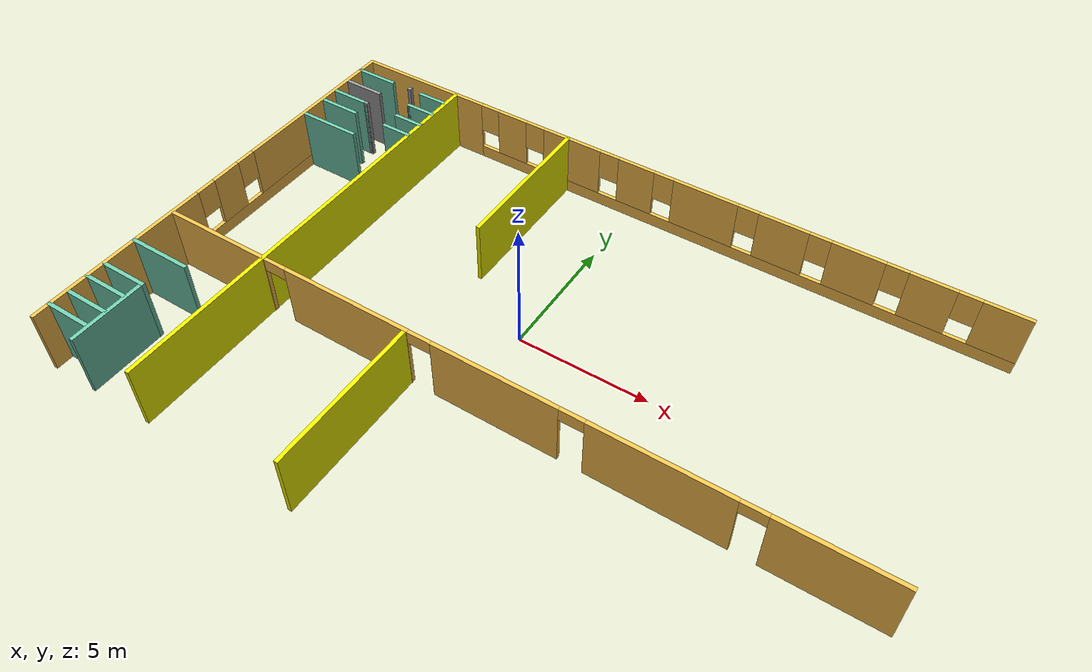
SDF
<sdf version="1.6">
 <model name="mybuilding">
  <pose>1.04921 -0.845204 0 0 -0 0</pose>
  <link name="Wall_104">
   <collision name="Wall_104_Collision">
    <geometry><box><size>17.1 0.15 2.5</size></box></geometry>
    <pose>0 0 1.25 0 -0 0</pose>
   </collision>
   <visual name="Wall_104_Visual">
    <pose>0 0 1.25 0 -0 0</pose>
    <geometry><box><size>17.1 0.15 2.5</size></box></geometry>
    <material>
     <script><uri>file://media/materials/scripts/gazebo.material</uri><name>Gazebo/Grey</name></script>
     <ambient>1 1 0 1</ambient>
    </material>
    <meta><layer>0</layer></meta>
   </visual>
   <pose>-9.12987 -0.014892 0 0 0 -1.5708</pose>
  </link>
  <link name="Wall_106">
   <collision name="Wall_106_Collision">
    <geometry><box><size>2.5 0.15 2.5</size></box></geometry>
    <pose>0 0 1.25 0 -0 0</pose>
   </collision>
   <visual name="Wall_106_Visual">
    <pose>0 0 1.25 0 -0 0</pose>
    <geometry><box><size>2.5 0.15 2.5</size></box></geometry>
    <material>
     <script><uri>file://media/materials/scripts/gazebo.material</uri><name>Gazebo/Grey</name></script>
     <ambient>0.435294 0.796078 0.67451 1</ambient>
    </material>
    <meta><layer>0</layer></meta>
   </visual>
   <pose>-12.1433 4.3296 0 0 -0 0</pose>
  </link>
  <link name="Wall_111">
   <collision name="Wall_111_Collision">
    <geometry><box><size>2.5 0.15 2.5</size></box></geometry>
    <pose>0 0 1.25 0 -0 0</pose>
   </collision>
   <visual name="Wall_111_Visual">
    <pose>0 0 1.25 0 -0 0</pose>
    <geometry><box><size>2.5 0.15 2.5</size></box></geometry>
    <material>
     <script><uri>file://media/materials/scripts/gazebo.material</uri><name>Gazebo/Grey</name></script>
     <ambient>0.435294 0.796078 0.67451 1</ambient>
    </material>
    <meta><layer>0</layer></meta>
   </visual>
   <pose>-12.2145 -4.32806 0 0 -0 0</pose>
  </link>
  <link name="Wall_113">
   <collision name="Wall_113_Collision">
    <geometry><box><size>1.75 0.15 2.5</size></box></geometry>
    <pose>0 0 1.25 0 -0 0</pose>
   </collision>
   <visual name="Wall_113_Visual">
    <pose>0 0 1.25 0 -0 0</pose>
    <geometry><box><size>1.75 0.15 2.5</size></box></geometry>
    <material>
     <script><uri>file://media/materials/scripts/gazebo.material</uri><name>Gazebo/Grey</name></script>
     <ambient>0.435294 0.796078 0.67451 1</ambient>
    </material>
    <meta><layer>0</layer></meta>
   </visual>
   <pose>-12.5657 5.4207 0 0 -0 0</pose>
  </link>
  <link name="Wall_118">
   <collision name="Wall_118_Collision">
    <geometry><box><size>1.75 0.15 2.5</size></box></geometry>
    <pose>0 0 1.25 0 -0 0</pose>
   </collision>
   <visual name="Wall_118_Visual">
    <pose>0 0 1.25 0 -0 0</pose>
    <geometry><box><size>1.75 0.15 2.5</size></box></geometry>
    <material>
     <script><uri>file://media/materials/scripts/gazebo.material</uri><name>Gazebo/Grey</name></script>
     <ambient>1 1 1 1</ambient>
    </material>
    <meta><layer>0</layer></meta>
   </visual>
   <pose>-12.591 6.93726 0 0 -0 0</pose>
  </link>
  <link name="Wall_122">
   <collision name="Wall_122_Collision">
    <geometry><box><size>1.75 0.15 2.5</size></box></geometry>
    <pose>0 0 1.25 0 -0 0</pose>
   </collision>
   <visual name="Wall_122_Visual">
    <pose>0 0 1.25 0 -0 0</pose>
    <geometry><box><size>1.75 0.15 2.5</size></box></geometry>
    <material>
     <script><uri>file://media/materials/scripts/gazebo.material</uri><name>Gazebo/Grey</name></script>
     <ambient>0.435294 0.796078 0.67451 1</ambient>
    </material>
    <meta><layer>0</layer></meta>
   </visual>
   <pose>-12.591 7.81489 0 0 -0 0</pose>
  </link>
  <link name="Wall_124">
   <collision name="Wall_124_Collision">
    <geometry><box><size>1.75 0.15 2.5</size></box></geometry>
    <pose>0 0 1.25 0 -0 0</pose>
   </collision>
   <visual name="Wall_124_Visual">
    <pose>0 0 1.25 0 -0 0</pose>
    <geometry><box><size>1.75 0.15 2.5</size></box></geometry>
    <material>
     <script><uri>file://media/materials/scripts/gazebo.material</uri><name>Gazebo/Grey</name></script>
     <ambient>0.435294 0.796078 0.67451 1</ambient>
    </material>
    <meta><layer>0</layer></meta>
   </visual>
   <pose>-12.591 6.15451 0 0 -0 0</pose>
  </link>
  <link name="Wall_125">
   <collision name="Wall_125_Collision">
    <geometry><box><size>0.16 0.15 2.5</size></box></geometry>
    <pose>0 0 1.25 0 -0 0</pose>
   </collision>
   <visual name="Wall_125_Visual">
    <pose>0 0 1.25 0 -0 0</pose>
    <geometry><box><size>0.16 0.15 2.5</size></box></geometry>
    <material>
     <script><uri>file://media/materials/scripts/gazebo.material</uri><name>Gazebo/Grey</name></script>
     <ambient>0 0 0 0</ambient>
    </material>
    <meta><layer>0</layer></meta>
   </visual>
   <pose>-11.786 6.15451 0 0 -0 0</pose>
  </link>
  <link name="Wall_128">
   <collision name="Wall_128_Collision">
    <geometry><box><size>1.25 0.15 2.5</size></box></geometry>
    <pose>0 0 1.25 0 -0 0</pose>
   </collision>
   <visual name="Wall_128_Visual">
    <pose>0 0 1.25 0 -0 0</pose>
    <geometry><box><size>1.25 0.15 2.5</size></box></geometry>
    <material>
     <script><uri>file://media/materials/scripts/gazebo.material</uri><name>Gazebo/Grey</name></script>
     <ambient>0.435294 0.796078 0.67451 1</ambient>
    </material>
    <meta><layer>0</layer></meta>
   </visual>
   <pose>-9.76007 7.80847 0 0 -0 3.14159</pose>
  </link>
  <link name="Wall_130">
   <collision name="Wall_130_Collision">
    <geometry><box><size>1.25 0.15 2.5</size></box></geometry>
    <pose>0 0 1.25 0 -0 0</pose>
   </collision>
   <visual name="Wall_130_Visual">
    <pose>0 0 1.25 0 -0 0</pose>
    <geometry><box><size>1.25 0.15 2.5</size></box></geometry>
    <material>
     <script><uri>file://media/materials/scripts/gazebo.material</uri><name>Gazebo/Grey</name></script>
     <ambient>0.435294 0.796078 0.67451 1</ambient>
    </material>
    <meta><layer>0</layer></meta>
   </visual>
   <pose>-9.71164 6.96281 0 0 -0 3.14159</pose>
  </link>
  <link name="Wall_131">
   <collision name="Wall_131_Collision">
    <geometry><box><size>0.16 0.15 2.5</size></box></geometry>
    <pose>0 0 1.25 0 -0 0</pose>
   </collision>
   <visual name="Wall_131_Visual">
    <pose>0 0 1.25 0 -0 0</pose>
    <geometry><box><size>0.16 0.15 2.5</size></box></geometry>
    <material>
     <script><uri>file://media/materials/scripts/gazebo.material</uri><name>Gazebo/Grey</name></script>
     <ambient>0 0 0 0</ambient>
    </material>
    <meta><layer>0</layer></meta>
   </visual>
   <pose>-10.2566 6.96281 0 0 -0 0</pose>
  </link>
  <link name="Wall_132">
   <collision name="Wall_132_Collision">
    <geometry><box><size>1.25 0.15 2.5</size></box></geometry>
    <pose>0 0 1.25 0 -0 0</pose>
   </collision>
   <visual name="Wall_132_Visual">
    <pose>0 0 1.25 0 -0 0</pose>
    <geometry><box><size>1.25 0.15 2.5</size></box></geometry>
    <material>
     <script><uri>file://media/materials/scripts/gazebo.material</uri><name>Gazebo/Grey</name></script>
     <ambient>0.435294 0.796078 0.67451 1</ambient>
    </material>
    <meta><layer>0</layer></meta>
   </visual>
   <pose>-9.70141 6.15841 0 0 -0 3.14159</pose>
  </link>
  <link name="Wall_134">
   <collision name="Wall_134_Collision">
    <geometry><box><size>1.25 0.15 2.5</size></box></geometry>
    <pose>0 0 1.25 0 -0 0</pose>
   </collision>
   <visual name="Wall_134_Visual">
    <pose>0 0 1.25 0 -0 0</pose>
    <geometry><box><size>1.25 0.15 2.5</size></box></geometry>
    <material>
     <script><uri>file://media/materials/scripts/gazebo.material</uri><name>Gazebo/Grey</name></script>
     <ambient>0.435294 0.796078 0.67451 1</ambient>
    </material>
    <meta><layer>0</layer></meta>
   </visual>
   <pose>-9.7135 5.41701 0 0 -0 3.14159</pose>
  </link>
  <link name="Wall_139">
   <collision name="Wall_139_Collision">
    <geometry><box><size>3 0.15 2.5</size></box></geometry>
    <pose>0 0 1.25 0 -0 0</pose>
   </collision>
   <visual name="Wall_139_Visual">
    <pose>0 0 1.25 0 -0 0</pose>
    <geometry><box><size>3 0.15 2.5</size></box></geometry>
    <material>
     <script><uri>file://media/materials/scripts/gazebo.material</uri><name>Gazebo/Grey</name></script>
     <ambient>0.435294 0.796078 0.67451 1</ambient>
    </material>
    <meta><layer>0</layer></meta>
   </visual>
   <pose>-11.6 -7.09333 0 0 -0 1.5708</pose>
  </link>
  <link name="Wall_140">
   <collision name="Wall_140_Collision">
    <geometry><box><size>1.9 0.15 2.5</size></box></geometry>
    <pose>0 0 1.25 0 -0 0</pose>
   </collision>
   <visual name="Wall_140_Visual">
    <pose>0 0 1.25 0 -0 0</pose>
    <geometry><box><size>1.9 0.15 2.5</size></box></geometry>
    <material>
     <script><uri>file://media/materials/scripts/gazebo.material</uri><name>Gazebo/Grey</name></script>
     <ambient>0.435294 0.796078 0.67451 1</ambient>
    </material>
    <meta><layer>0</layer></meta>
   </visual>
   <pose>-12.475 -5.66833 0 0 -0 3.14159</pose>
  </link>
  <link name="Wall_142">
   <collision name="Wall_142_Collision">
    <geometry><box><size>1.75 0.15 2.5</size></box></geometry>
    <pose>0 0 1.25 0 -0 0</pose>
   </collision>
   <visual name="Wall_142_Visual">
    <pose>0 0 1.25 0 -0 0</pose>
    <geometry><box><size>1.75 0.15 2.5</size></box></geometry>
    <material>
     <script><uri>file://media/materials/scripts/gazebo.material</uri><name>Gazebo/Grey</name></script>
     <ambient>0.435294 0.796078 0.67451 1</ambient>
    </material>
    <meta><layer>0</layer></meta>
   </visual>
   <pose>-12.4841 -7.19003 0 0 -0 0</pose>
  </link>
  <link name="Wall_144">
   <collision name="Wall_144_Collision">
    <geometry><box><size>1.8 0.15 2.5</size></box></geometry>
    <pose>0 0 1.25 0 -0 0</pose>
   </collision>
   <visual name="Wall_144_Visual">
    <pose>0 0 1.25 0 -0 0</pose>
    <geometry><box><size>1.8 0.15 2.5</size></box></geometry>
    <material>
     <script><uri>file://media/materials/scripts/gazebo.material</uri><name>Gazebo/Grey</name></script>
     <ambient>0.435294 0.796078 0.67451 1</ambient>
    </material>
    <meta><layer>0</layer></meta>
   </visual>
   <pose>-12.5407 -6.37701 0 0 -0 0</pose>
  </link>
  <link name="Wall_147">
   <collision name="Wall_147_Collision">
    <geometry><box><size>1.8 0.15 2.5</size></box></geometry>
    <pose>0 0 1.25 0 -0 0</pose>
   </collision>
   <visual name="Wall_147_Visual">
    <pose>0 0 1.25 0 -0 0</pose>
    <geometry><box><size>1.8 0.15 2.5</size></box></geometry>
    <material>
     <script><uri>file://media/materials/scripts/gazebo.material</uri><name>Gazebo/Grey</name></script>
     <ambient>0.435294 0.796078 0.67451 1</ambient>
    </material>
    <meta><layer>0</layer></meta>
   </visual>
   <pose>-12.5758 -7.90564 0 0 -0 0</pose>
  </link>
  <link name="Wall_151">
   <collision name="Wall_151_Collision">
    <geometry><box><size>6 0.15 2.5</size></box></geometry>
    <pose>0 0 1.25 0 -0 0</pose>
   </collision>
   <visual name="Wall_151_Visual">
    <pose>0 0 1.25 0 -0 0</pose>
    <geometry><box><size>6 0.15 2.5</size></box></geometry>
    <material>
     <script><uri>file://media/materials/scripts/gazebo.material</uri><name>Gazebo/Grey</name></script>
     <ambient>1 1 0 1</ambient>
    </material>
    <meta><layer>0</layer></meta>
   </visual>
   <pose>-3.91292 5.55304 0 0 0 -1.5708</pose>
  </link>
  <link name="Wall_156">
   <collision name="Wall_156_Collision">
    <geometry><box><size>6 0.15 2.5</size></box></geometry>
    <pose>0 0 1.25 0 -0 0</pose>
   </collision>
   <visual name="Wall_156_Visual">
    <pose>0 0 1.25 0 -0 0</pose>
    <geometry><box><size>6 0.15 2.5</size></box></geometry>
    <material>
     <script><uri>file://media/materials/scripts/gazebo.material</uri><name>Gazebo/Grey</name></script>
     <ambient>1 1 0 1</ambient>
    </material>
    <meta><layer>0</layer></meta>
   </visual>
   <pose>-3.08532 -5.54983 0 0 0 -1.5708</pose>
  </link>
  <link name="Wall_185">
   <collision name="Wall_185_Collision">
    <geometry><box><size>0.15 0.15 2.5</size></box></geometry>
    <pose>0 0 1.25 0 -0 0</pose>
   </collision>
   <visual name="Wall_185_Visual">
    <pose>0 0 1.25 0 -0 0</pose>
    <geometry><box><size>0.15 0.15 2.5</size></box></geometry>
    <material>
     <script><uri>file://media/materials/scripts/gazebo.material</uri><name>Gazebo/Grey</name></script>
     <ambient>1 1 1 1</ambient>
    </material>
    <meta><layer>0</layer></meta>
   </visual>
   <pose>-10.9249 7.85699 0 0 -0 0</pose>
  </link>
  <link name="Wall_89">
   <pose>-13.425 0 0 0 -0 1.5708</pose>
   <visual name="Wall_89_Visual_0">
    <pose>-5.00389 0 1.25 0 -0 0</pose>
    <geometry><box><size>7.24221 0.15 2.5</size></box></geometry>
    <material>
     <script><uri>file://media/materials/scripts/gazebo.material</uri><name>Gazebo/Grey</name></script>
     <ambient>1 0.764706 0.305882 1</ambient>
    </material>
    <meta><layer>0</layer></meta>
   </visual>
   <collision name="Wall_89_Collision_0">
    <geometry><box><size>7.24221 0.15 2.5</size></box></geometry>
    <pose>-5.00389 0 1.25 0 -0 0</pose>
   </collision>
   <visual name="Wall_89_Visual_1">
    <pose>3.62111 0 0.25 0 -0 0</pose>
    <geometry><box><size>10.0078 0.15 0.5</size></box></geometry>
    <material>
     <script><uri>file://media/materials/scripts/gazebo.material</uri><name>Gazebo/Grey</name></script>
     <ambient>1 0.764706 0.305882 1</ambient>
    </material>
    <meta><layer>0</layer></meta>
   </visual>
   <collision name="Wall_89_Collision_1">
    <geometry><box><size>10.0078 0.15 0.5</size></box></geometry>
    <pose>3.62111 0 0.25 0 -0 0</pose>
   </collision>
   <visual name="Wall_89_Visual_2">
    <pose>0.026482 0 1.5 0 -0 0</pose>
    <geometry><box><size>1.21854 0.15 2</size></box></geometry>
    <material>
     <script><uri>file://media/materials/scripts/gazebo.material</uri><name>Gazebo/Grey</name></script>
     <ambient>1 0.764706 0.305882 1</ambient>
    </material>
    <meta><layer>0</layer></meta>
   </visual>
   <collision name="Wall_89_Collision_2">
    <geometry><box><size>1.21854 0.15 2</size></box></geometry>
    <pose>0.026482 0 1.5 0 -0 0</pose>
   </collision>
   <visual name="Wall_89_Visual_3">
    <pose>5.03038 0 1.5 0 -0 0</pose>
    <geometry><box><size>7.18925 0.15 2</size></box></geometry>
    <material>
     <script><uri>file://media/materials/scripts/gazebo.material</uri><name>Gazebo/Grey</name></script>
     <ambient>1 0.764706 0.305882 1</ambient>
    </material>
    <meta><layer>0</layer></meta>
   </visual>
   <collision name="Wall_89_Collision_3">
    <geometry><box><size>7.18925 0.15 2</size></box></geometry>
    <pose>5.03038 0 1.5 0 -0 0</pose>
   </collision>
   <visual name="Wall_89_Visual_4">
    <pose>-0.982788 0 1.9 0 -0 0</pose>
    <geometry><box><size>0.8 0.15 1.2</size></box></geometry>
    <material>
     <script><uri>file://media/materials/scripts/gazebo.material</uri><name>Gazebo/Grey</name></script>
     <ambient>1 0.764706 0.305882 1</ambient>
    </material>
    <meta><layer>0</layer></meta>
   </visual>
   <collision name="Wall_89_Collision_4">
    <geometry><box><size>0.8 0.15 1.2</size></box></geometry>
    <pose>-0.982788 0 1.9 0 -0 0</pose>
   </collision>
   <visual name="Wall_89_Visual_5">
    <pose>1.03575 0 1.9 0 -0 0</pose>
    <geometry><box><size>0.8 0.15 1.2</size></box></geometry>
    <material>
     <script><uri>file://media/materials/scripts/gazebo.material</uri><name>Gazebo/Grey</name></script>
     <ambient>1 0.764706 0.305882 1</ambient>
    </material>
    <meta><layer>0</layer></meta>
   </visual>
   <collision name="Wall_89_Collision_5">
    <geometry><box><size>0.8 0.15 1.2</size></box></geometry>
    <pose>1.03575 0 1.9 0 -0 0</pose>
   </collision>
  </link>
  <link name="Wall_90">
   <pose>0 8.55 0 0 -0 0</pose>
   <visual name="Wall_90_Visual_0">
    <pose>-10.6849 0 1.25 0 -0 0</pose>
    <geometry><box><size>5.63012 0.15 2.5</size></box></geometry>
    <material>
     <script><uri>file://media/materials/scripts/gazebo.material</uri><name>Gazebo/Grey</name></script>
     <ambient>1 0.764706 0.305882 1</ambient>
    </material>
    <meta><layer>0</layer></meta>
   </visual>
   <collision name="Wall_90_Collision_0">
    <geometry><box><size>5.63012 0.15 2.5</size></box></geometry>
    <pose>-10.6849 0 1.25 0 -0 0</pose>
   </collision>
   <visual name="Wall_90_Visual_1">
    <pose>2.81506 0 0.25 0 -0 0</pose>
    <geometry><box><size>21.3699 0.15 0.5</size></box></geometry>
    <material>
     <script><uri>file://media/materials/scripts/gazebo.material</uri><name>Gazebo/Grey</name></script>
     <ambient>1 0.764706 0.305882 1</ambient>
    </material>
    <meta><layer>0</layer></meta>
   </visual>
   <collision name="Wall_90_Collision_1">
    <geometry><box><size>21.3699 0.15 0.5</size></box></geometry>
    <pose>2.81506 0 0.25 0 -0 0</pose>
   </collision>
   <visual name="Wall_90_Visual_2">
    <pose>-6.41969 0 1.5 0 -0 0</pose>
    <geometry><box><size>1.30037 0.15 2</size></box></geometry>
    <material>
     <script><uri>file://media/materials/scripts/gazebo.material</uri><name>Gazebo/Grey</name></script>
     <ambient>1 0.764706 0.305882 1</ambient>
    </material>
    <meta><layer>0</layer></meta>
   </visual>
   <collision name="Wall_90_Collision_2">
    <geometry><box><size>1.30037 0.15 2</size></box></geometry>
    <pose>-6.41969 0 1.5 0 -0 0</pose>
   </collision>
   <visual name="Wall_90_Visual_3">
    <pose>-3.71922 0 1.5 0 -0 0</pose>
    <geometry><box><size>2.50059 0.15 2</size></box></geometry>
    <material>
     <script><uri>file://media/materials/scripts/gazebo.material</uri><name>Gazebo/Grey</name></script>
     <ambient>1 0.764706 0.305882 1</ambient>
    </material>
    <meta><layer>0</layer></meta>
   </visual>
   <collision name="Wall_90_Collision_3">
    <geometry><box><size>2.50059 0.15 2</size></box></geometry>
    <pose>-3.71922 0 1.5 0 -0 0</pose>
   </collision>
   <visual name="Wall_90_Visual_4">
    <pose>-0.923265 0 1.5 0 -0 0</pose>
    <geometry><box><size>1.49131 0.15 2</size></box></geometry>
    <material>
     <script><uri>file://media/materials/scripts/gazebo.material</uri><name>Gazebo/Grey</name></script>
     <ambient>1 0.764706 0.305882 1</ambient>
    </material>
    <meta><layer>0</layer></meta>
   </visual>
   <collision name="Wall_90_Collision_4">
    <geometry><box><size>1.49131 0.15 2</size></box></geometry>
    <pose>-0.923265 0 1.5 0 -0 0</pose>
   </collision>
   <visual name="Wall_90_Visual_5">
    <pose>1.90157 0 1.5 0 -0 0</pose>
    <geometry><box><size>2.55835 0.15 2</size></box></geometry>
    <material>
     <script><uri>file://media/materials/scripts/gazebo.material</uri><name>Gazebo/Grey</name></script>
     <ambient>1 0.764706 0.305882 1</ambient>
    </material>
    <meta><layer>0</layer></meta>
   </visual>
   <collision name="Wall_90_Collision_5">
    <geometry><box><size>2.55835 0.15 2</size></box></geometry>
    <pose>1.90157 0 1.5 0 -0 0</pose>
   </collision>
   <visual name="Wall_90_Visual_6">
    <pose>4.92912 0 1.5 0 -0 0</pose>
    <geometry><box><size>1.89675 0.15 2</size></box></geometry>
    <material>
     <script><uri>file://media/materials/scripts/gazebo.material</uri><name>Gazebo/Grey</name></script>
     <ambient>1 0.764706 0.305882 1</ambient>
    </material>
    <meta><layer>0</layer></meta>
   </visual>
   <collision name="Wall_90_Collision_6">
    <geometry><box><size>1.89675 0.15 2</size></box></geometry>
    <pose>4.92912 0 1.5 0 -0 0</pose>
   </collision>
   <visual name="Wall_90_Visual_7">
    <pose>7.64173 0 1.5 0 -0 0</pose>
    <geometry><box><size>1.92848 0.15 2</size></box></geometry>
    <material>
     <script><uri>file://media/materials/scripts/gazebo.material</uri><name>Gazebo/Grey</name></script>
     <ambient>1 0.764706 0.305882 1</ambient>
    </material>
    <meta><layer>0</layer></meta>
   </visual>
   <collision name="Wall_90_Collision_7">
    <geometry><box><size>1.92848 0.15 2</size></box></geometry>
    <pose>7.64173 0 1.5 0 -0 0</pose>
   </collision>
   <visual name="Wall_90_Visual_8">
    <pose>10.2274 0 1.5 0 -0 0</pose>
    <geometry><box><size>1.64294 0.15 2</size></box></geometry>
    <material>
     <script><uri>file://media/materials/scripts/gazebo.material</uri><name>Gazebo/Grey</name></script>
     <ambient>1 0.764706 0.305882 1</ambient>
    </material>
    <meta><layer>0</layer></meta>
   </visual>
   <collision name="Wall_90_Collision_8">
    <geometry><box><size>1.64294 0.15 2</size></box></geometry>
    <pose>10.2274 0 1.5 0 -0 0</pose>
   </collision>
   <visual name="Wall_90_Visual_9">
    <pose>12.6745 0 1.5 0 -0 0</pose>
    <geometry><box><size>1.65109 0.15 2</size></box></geometry>
    <material>
     <script><uri>file://media/materials/scripts/gazebo.material</uri><name>Gazebo/Grey</name></script>
     <ambient>1 0.764706 0.305882 1</ambient>
    </material>
    <meta><layer>0</layer></meta>
   </visual>
   <collision name="Wall_90_Collision_9">
    <geometry><box><size>1.65109 0.15 2</size></box></geometry>
    <pose>12.6745 0 1.5 0 -0 0</pose>
   </collision>
   <visual name="Wall_90_Visual_10">
    <pose>-7.46988 0 1.9 0 -0 0</pose>
    <geometry><box><size>0.8 0.15 1.2</size></box></geometry>
    <material>
     <script><uri>file://media/materials/scripts/gazebo.material</uri><name>Gazebo/Grey</name></script>
     <ambient>1 0.764706 0.305882 1</ambient>
    </material>
    <meta><layer>0</layer></meta>
   </visual>
   <collision name="Wall_90_Collision_10">
    <geometry><box><size>0.8 0.15 1.2</size></box></geometry>
    <pose>-7.46988 0 1.9 0 -0 0</pose>
   </collision>
   <visual name="Wall_90_Visual_11">
    <pose>-5.36951 0 1.9 0 -0 0</pose>
    <geometry><box><size>0.8 0.15 1.2</size></box></geometry>
    <material>
     <script><uri>file://media/materials/scripts/gazebo.material</uri><name>Gazebo/Grey</name></script>
     <ambient>1 0.764706 0.305882 1</ambient>
    </material>
    <meta><layer>0</layer></meta>
   </visual>
   <collision name="Wall_90_Collision_11">
    <geometry><box><size>0.8 0.15 1.2</size></box></geometry>
    <pose>-5.36951 0 1.9 0 -0 0</pose>
   </collision>
   <visual name="Wall_90_Visual_12">
    <pose>-2.06892 0 1.9 0 -0 0</pose>
    <geometry><box><size>0.8 0.15 1.2</size></box></geometry>
    <material>
     <script><uri>file://media/materials/scripts/gazebo.material</uri><name>Gazebo/Grey</name></script>
     <ambient>1 0.764706 0.305882 1</ambient>
    </material>
    <meta><layer>0</layer></meta>
   </visual>
   <collision name="Wall_90_Collision_12">
    <geometry><box><size>0.8 0.15 1.2</size></box></geometry>
    <pose>-2.06892 0 1.9 0 -0 0</pose>
   </collision>
   <visual name="Wall_90_Visual_13">
    <pose>0.222393 0 1.9 0 -0 0</pose>
    <geometry><box><size>0.8 0.15 1.2</size></box></geometry>
    <material>
     <script><uri>file://media/materials/scripts/gazebo.material</uri><name>Gazebo/Grey</name></script>
     <ambient>1 0.764706 0.305882 1</ambient>
    </material>
    <meta><layer>0</layer></meta>
   </visual>
   <collision name="Wall_90_Collision_13">
    <geometry><box><size>0.8 0.15 1.2</size></box></geometry>
    <pose>0.222393 0 1.9 0 -0 0</pose>
   </collision>
   <visual name="Wall_90_Visual_14">
    <pose>3.58074 0 1.9 0 -0 0</pose>
    <geometry><box><size>0.8 0.15 1.2</size></box></geometry>
    <material>
     <script><uri>file://media/materials/scripts/gazebo.material</uri><name>Gazebo/Grey</name></script>
     <ambient>1 0.764706 0.305882 1</ambient>
    </material>
    <meta><layer>0</layer></meta>
   </visual>
   <collision name="Wall_90_Collision_14">
    <geometry><box><size>0.8 0.15 1.2</size></box></geometry>
    <pose>3.58074 0 1.9 0 -0 0</pose>
   </collision>
   <visual name="Wall_90_Visual_15">
    <pose>6.27749 0 1.9 0 -0 0</pose>
    <geometry><box><size>0.8 0.15 1.2</size></box></geometry>
    <material>
     <script><uri>file://media/materials/scripts/gazebo.material</uri><name>Gazebo/Grey</name></script>
     <ambient>1 0.764706 0.305882 1</ambient>
    </material>
    <meta><layer>0</layer></meta>
   </visual>
   <collision name="Wall_90_Collision_15">
    <geometry><box><size>0.8 0.15 1.2</size></box></geometry>
    <pose>6.27749 0 1.9 0 -0 0</pose>
   </collision>
   <visual name="Wall_90_Visual_16">
    <pose>9.00597 0 1.9 0 -0 0</pose>
    <geometry><box><size>0.8 0.15 1.2</size></box></geometry>
    <material>
     <script><uri>file://media/materials/scripts/gazebo.material</uri><name>Gazebo/Grey</name></script>
     <ambient>1 0.764706 0.305882 1</ambient>
    </material>
    <meta><layer>0</layer></meta>
   </visual>
   <collision name="Wall_90_Collision_16">
    <geometry><box><size>0.8 0.15 1.2</size></box></geometry>
    <pose>9.00597 0 1.9 0 -0 0</pose>
   </collision>
   <visual name="Wall_90_Visual_17">
    <pose>11.4489 0 1.9 0 -0 0</pose>
    <geometry><box><size>0.8 0.15 1.2</size></box></geometry>
    <material>
     <script><uri>file://media/materials/scripts/gazebo.material</uri><name>Gazebo/Grey</name></script>
     <ambient>1 0.764706 0.305882 1</ambient>
    </material>
    <meta><layer>0</layer></meta>
   </visual>
   <collision name="Wall_90_Collision_17">
    <geometry><box><size>0.8 0.15 1.2</size></box></geometry>
    <pose>11.4489 0 1.9 0 -0 0</pose>
   </collision>
  </link>
  <link name="Wall_96">
   <pose>-0.005489 -2.58663 0 0 -0 0</pose>
   <visual name="Wall_96_Visual_0">
    <pose>-11.1995 0 1.25 0 -0 0</pose>
    <geometry><box><size>4.35098 0.15 2.5</size></box></geometry>
    <material>
     <script><uri>file://media/materials/scripts/gazebo.material</uri><name>Gazebo/Grey</name></script>
     <ambient>1 0.764706 0.305882 1</ambient>
    </material>
    <meta><layer>0</layer></meta>
   </visual>
   <collision name="Wall_96_Collision_0">
    <geometry><box><size>4.35098 0.15 2.5</size></box></geometry>
    <pose>-11.1995 0 1.25 0 -0 0</pose>
   </collision>
   <visual name="Wall_96_Visual_1">
    <pose>-5.56001 0 1.25 0 -0 0</pose>
    <geometry><box><size>5.12803 0.15 2.5</size></box></geometry>
    <material>
     <script><uri>file://media/materials/scripts/gazebo.material</uri><name>Gazebo/Grey</name></script>
     <ambient>1 0.764706 0.305882 1</ambient>
    </material>
    <meta><layer>0</layer></meta>
   </visual>
   <collision name="Wall_96_Collision_1">
    <geometry><box><size>5.12803 0.15 2.5</size></box></geometry>
    <pose>-5.56001 0 1.25 0 -0 0</pose>
   </collision>
   <visual name="Wall_96_Visual_2">
    <pose>0.261721 0 1.25 0 -0 0</pose>
    <geometry><box><size>4.71542 0.15 2.5</size></box></geometry>
    <material>
     <script><uri>file://media/materials/scripts/gazebo.material</uri><name>Gazebo/Grey</name></script>
     <ambient>1 0.764706 0.305882 1</ambient>
    </material>
    <meta><layer>0</layer></meta>
   </visual>
   <collision name="Wall_96_Collision_2">
    <geometry><box><size>4.71542 0.15 2.5</size></box></geometry>
    <pose>0.261721 0 1.25 0 -0 0</pose>
   </collision>
   <visual name="Wall_96_Visual_3">
    <pose>5.98325 0 1.25 0 -0 0</pose>
    <geometry><box><size>4.92764 0.15 2.5</size></box></geometry>
    <material>
     <script><uri>file://media/materials/scripts/gazebo.material</uri><name>Gazebo/Grey</name></script>
     <ambient>1 0.764706 0.305882 1</ambient>
    </material>
    <meta><layer>0</layer></meta>
   </visual>
   <collision name="Wall_96_Collision_3">
    <geometry><box><size>4.92764 0.15 2.5</size></box></geometry>
    <pose>5.98325 0 1.25 0 -0 0</pose>
   </collision>
   <visual name="Wall_96_Visual_4">
    <pose>11.361 0 1.25 0 -0 0</pose>
    <geometry><box><size>4.02792 0.15 2.5</size></box></geometry>
    <material>
     <script><uri>file://media/materials/scripts/gazebo.material</uri><name>Gazebo/Grey</name></script>
     <ambient>1 0.764706 0.305882 1</ambient>
    </material>
    <meta><layer>0</layer></meta>
   </visual>
   <collision name="Wall_96_Collision_4">
    <geometry><box><size>4.02792 0.15 2.5</size></box></geometry>
    <pose>11.361 0 1.25 0 -0 0</pose>
   </collision>
   <visual name="Wall_96_Visual_5">
    <pose>-8.57402 0 2.25 0 -0 0</pose>
    <geometry><box><size>0.9 0.15 0.5</size></box></geometry>
    <material>
     <script><uri>file://media/materials/scripts/gazebo.material</uri><name>Gazebo/Grey</name></script>
     <ambient>1 0.764706 0.305882 1</ambient>
    </material>
    <meta><layer>0</layer></meta>
   </visual>
   <collision name="Wall_96_Collision_5">
    <geometry><box><size>0.9 0.15 0.5</size></box></geometry>
    <pose>-8.57402 0 2.25 0 -0 0</pose>
   </collision>
   <visual name="Wall_96_Visual_6">
    <pose>-2.54599 0 2.25 0 -0 0</pose>
    <geometry><box><size>0.9 0.15 0.5</size></box></geometry>
    <material>
     <script><uri>file://media/materials/scripts/gazebo.material</uri><name>Gazebo/Grey</name></script>
     <ambient>1 0.764706 0.305882 1</ambient>
    </material>
    <meta><layer>0</layer></meta>
   </visual>
   <collision name="Wall_96_Collision_6">
    <geometry><box><size>0.9 0.15 0.5</size></box></geometry>
    <pose>-2.54599 0 2.25 0 -0 0</pose>
   </collision>
   <visual name="Wall_96_Visual_7">
    <pose>3.06943 0 2.25 0 -0 0</pose>
    <geometry><box><size>0.9 0.15 0.5</size></box></geometry>
    <material>
     <script><uri>file://media/materials/scripts/gazebo.material</uri><name>Gazebo/Grey</name></script>
     <ambient>1 0.764706 0.305882 1</ambient>
    </material>
    <meta><layer>0</layer></meta>
   </visual>
   <collision name="Wall_96_Collision_7">
    <geometry><box><size>0.9 0.15 0.5</size></box></geometry>
    <pose>3.06943 0 2.25 0 -0 0</pose>
   </collision>
   <visual name="Wall_96_Visual_8">
    <pose>8.89708 0 2.25 0 -0 0</pose>
    <geometry><box><size>0.9 0.15 0.5</size></box></geometry>
    <material>
     <script><uri>file://media/materials/scripts/gazebo.material</uri><name>Gazebo/Grey</name></script>
     <ambient>1 0.764706 0.305882 1</ambient>
    </material>
    <meta><layer>0</layer></meta>
   </visual>
   <collision name="Wall_96_Collision_8">
    <geometry><box><size>0.9 0.15 0.5</size></box></geometry>
    <pose>8.89708 0 2.25 0 -0 0</pose>
   </collision>
  </link>
  <static>1</static>
 </model>
</sdf>
